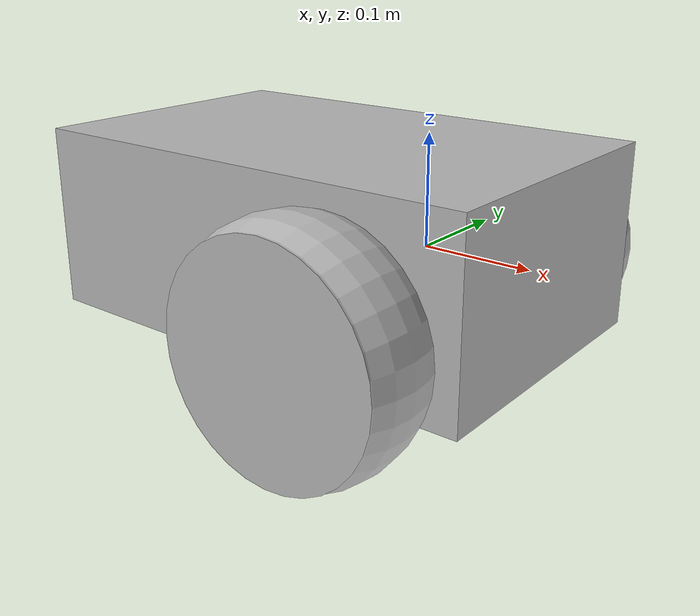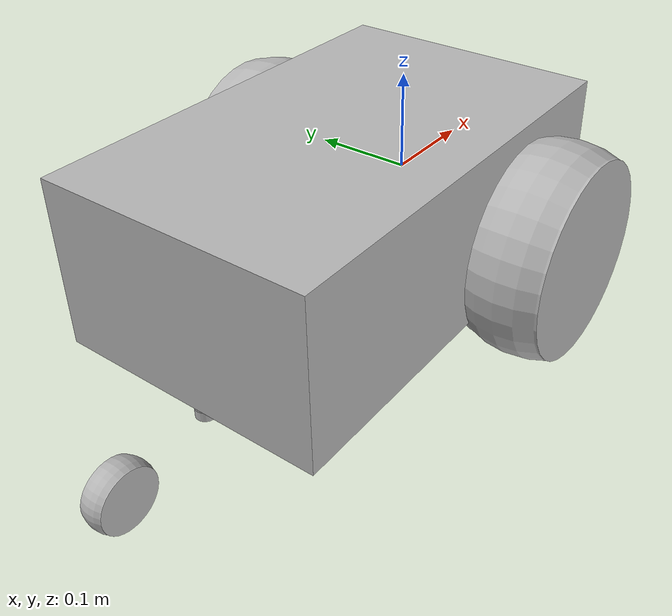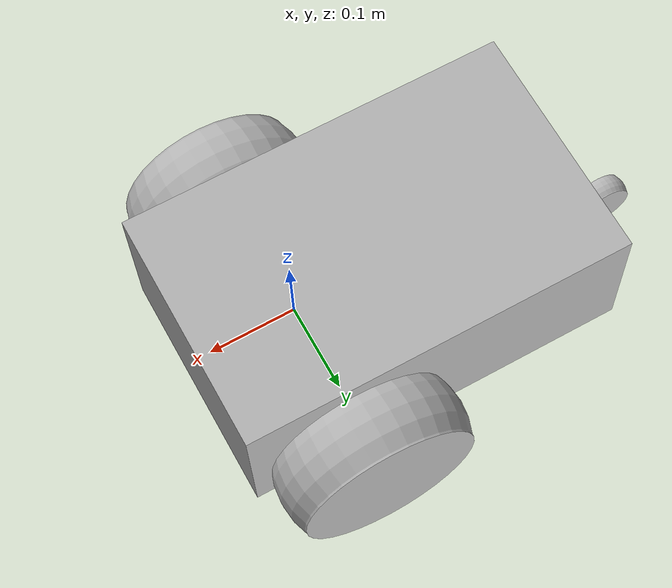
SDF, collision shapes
<sdf version='1.7'>
  <model name='pioneer2dx'>
    <link name='base_link'>
      <inertial>
        <pose>-0.1002 0 -0.0001 0 -0 0</pose>
        <mass>10.01</mass>
        <inertia>
          <ixx>0.0881454</ixx>
          <ixy>0</ixy>
          <ixz>-0.0001998</ixz>
          <iyy>0.197045</iyy>
          <iyz>0</iyz>
          <izz>0.236945</izz>
        </inertia>
      </inertial>
      <collision name='base_link_fixed_joint_lump__chasis_collision_collision'>
        <pose>-0.1 0 0 0 -0 0</pose>
        <geometry>
          <box>
            <size>0.445 0.277 0.17</size>
          </box>
        </geometry>
      </collision>
      <collision name='base_link_fixed_joint_lump__castor_plate_collision2_collision_1'>
        <pose>-0.3 0 -0.1 0 -0 0</pose>
        <geometry>
          <cylinder>
            <length>0.01</length>
            <radius>0.01</radius>
          </cylinder>
        </geometry>
      </collision>
      <visual name='base_link_fixed_joint_lump__chasis_visual_visual'>
        <pose>-0.1 0 0.04 0 -0 0</pose>
        <geometry>
          <mesh>
            <scale>1 1 1</scale>
            <uri>model://pioneer2dx/meshes/chassis.dae</uri>
          </mesh>
        </geometry>
      </visual>
      <visual name='base_link_fixed_joint_lump__castor_plate_visual2_visual_1'>
        <pose>-0.3 0 -0.1 0 -0 0</pose>
        <geometry>
          <cylinder>
            <length>0.01</length>
            <radius>0.01</radius>
          </cylinder>
        </geometry>
      </visual>
    </link>
    <joint name='plate2_plate' type='revolute'>
      <pose relative_to='base_link'>-0.3 0 -0.11 0 -0 0</pose>
      <parent>base_link</parent>
      <child>plate_castor</child>
      <axis>
        <xyz>0 0 1</xyz>
        <limit>
          <lower>-1e+16</lower>
          <upper>1e+16</upper>
        </limit>
        <dynamics>
          <damping>0.005</damping>
          <friction>0.01</friction>
          <spring_reference>0</spring_reference>
          <spring_stiffness>0</spring_stiffness>
        </dynamics>
      </axis>
    </joint>
    <link name='plate_castor'>
      <pose relative_to='plate2_plate'>0 0 0 0 -0 0</pose>
      <inertial>
        <pose>0 0 0 0 -0 0</pose>
        <mass>0.01</mass>
        <inertia>
          <ixx>4.55e-05</ixx>
          <ixy>0</ixy>
          <ixz>0</ixz>
          <iyy>4.55e-05</iyy>
          <iyz>0</iyz>
          <izz>4.55e-05</izz>
        </inertia>
      </inertial>
      <collision name='plate_castor_fixed_joint_lump__castor_plate_collision_collision'>
        <pose>0 0 0 0 -0 0</pose>
        <geometry>
          <cylinder>
            <length>0.01</length>
            <radius>0.01</radius>
          </cylinder>
        </geometry>
      </collision>
      <visual name='plate_castor_fixed_joint_lump__castor_plate_visual_visual'>
        <pose>0 0 0 0 -0 0</pose>
        <geometry>
          <cylinder>
            <length>0.01</length>
            <radius>0.01</radius>
          </cylinder>
        </geometry>
      </visual>
    </link>
    <joint name='plate_castor_joint' type='revolute'>
      <pose relative_to='plate_castor'>-0.1 0 -0.016 0 -0 0</pose>
      <parent>plate_castor</parent>
      <child>castor</child>
      <axis>
        <xyz>0 1 0</xyz>
        <limit>
          <lower>-1e+16</lower>
          <upper>1e+16</upper>
        </limit>
        <dynamics>
          <damping>0.005</damping>
          <friction>0.01</friction>
          <spring_reference>0</spring_reference>
          <spring_stiffness>0</spring_stiffness>
        </dynamics>
      </axis>
    </joint>
    <link name='castor'>
      <pose relative_to='plate_castor_joint'>0 0 0 0 -0 0</pose>
      <inertial>
        <pose>0 0 0 0 -0 0</pose>
        <mass>0.15</mass>
        <inertia>
          <ixx>0.000455</ixx>
          <ixy>0</ixy>
          <ixz>0</ixz>
          <iyy>0.00075</iyy>
          <iyz>0</iyz>
          <izz>0.000455</izz>
        </inertia>
      </inertial>
      <collision name='castor_collision_collision'>
        <pose>0 0 0 0 -0 0</pose>
        <geometry>
          <mesh>
            <scale>0.3 0.3 0.3</scale>
            <uri>model://pioneer2dx/meshes/wheel_v5.dae</uri>
          </mesh>
        </geometry>
        <surface>
					<friction>
						<ode>
							<mu>0.01</mu>
							<mu2>0.01</mu2>
							<slip1>0</slip1>
							<slip2>0</slip2>
							<maxVel>0.0</maxVel>
							<minDepth>0.001</minDepth>
						</ode>
					</friction>
				</surface>
      </collision>
      <visual name='castor_visual_visual'>
        <pose>0 0 0 0 -0 0</pose>
        <geometry>
          <mesh>
            <scale>0.3 0.3 0.3</scale>
            <uri>model://pioneer2dx/meshes/wheel_v5.dae</uri>
          </mesh>
        </geometry>
      </visual>
    </link>
    <joint name='left_dc_motor' type='revolute'>
      <pose relative_to='base_link'>0 0.17 -0.037 -1.57 0 0</pose>
      <parent>base_link</parent>
      <child>left_wheel</child>
      <axis>
        <xyz>0 0 1</xyz>
        <limit>
          <lower>-1e+16</lower>
          <upper>1e+16</upper>
        </limit>
        <dynamics>
          <damping>0.005</damping>
          <friction>0.01</friction>
          <spring_reference>0</spring_reference>
          <spring_stiffness>0</spring_stiffness>
        </dynamics>
      </axis>
      <physics>
        <provide_feedback>1</provide_feedback>
        <ode>
          <limit>
            <cfm>0</cfm>
            <erp>0.2</erp>
          </limit>
          <provide_feedback>1</provide_feedback>
        </ode>
      </physics>
    </joint>
    <link name='left_wheel'>
      <pose relative_to='left_dc_motor'>0 0 0 0 -0 0</pose>
      <inertial>
        <pose>0 0 0 0 -0 0</pose>
        <mass>1</mass>
        <inertia>
          <ixx>0.0030334</ixx>
          <ixy>0</ixy>
          <ixz>0</ixz>
          <iyy>0.00455</iyy>
          <iyz>0</iyz>
          <izz>0.005</izz>
        </inertia>
      </inertial>
      <collision name='left_wheel_fixed_joint_lump__left_collision_collision'>
        <pose>0 0 0 1.57 -0 0</pose>
        <geometry>
          <mesh>
            <scale>1 1 1</scale>
            <uri>model://pioneer2dx/meshes/wheel_v5.dae</uri>
          </mesh>
        </geometry>
        <surface>
					<friction>
						<ode>
							<mu>0.2</mu>
							<mu2>0.2</mu2>
							<slip1>0</slip1>
							<slip2>0</slip2>
							<maxVel>0.0</maxVel>
							<minDepth>0.001</minDepth>
						</ode>
					</friction>
				</surface>
      </collision>
      <visual name='left_wheel_fixed_joint_lump__left_visual_visual'>
        <pose>0 0 0 1.57 -0 0</pose>
        <geometry>
          <mesh>
            <scale>1 1 1</scale>
            <uri>model://pioneer2dx/meshes/wheel_v5.dae</uri>
          </mesh>
        </geometry>
      </visual>
    </link>
    <joint name='right_dc_motor' type='revolute'>
      <pose relative_to='base_link'>0 -0.17 -0.037 -1.57 0 0</pose>
      <parent>base_link</parent>
      <child>right_wheel</child>
      <axis>
        <xyz>0 0 1</xyz>
        <limit>
          <lower>-1e+16</lower>
          <upper>1e+16</upper>
        </limit>
        <dynamics>
          <damping>0.005</damping>
          <friction>0.01</friction>
          <spring_reference>0</spring_reference>
          <spring_stiffness>0</spring_stiffness>
        </dynamics>
      </axis>
      <physics>
        <provide_feedback>1</provide_feedback>
        <ode>
          <limit>
            <cfm>0</cfm>
            <erp>0.2</erp>
          </limit>
          <provide_feedback>1</provide_feedback>
        </ode>
      </physics>
    </joint>
    <link name='right_wheel'>
      <pose relative_to='right_dc_motor'>0 0 0 0 -0 0</pose>
      <inertial>
        <pose>0 0 0 0 -0 0</pose>
        <mass>1</mass>
        <inertia>
          <ixx>0.0030334</ixx>
          <ixy>0</ixy>
          <ixz>0</ixz>
          <iyy>0.00455</iyy>
          <iyz>0</iyz>
          <izz>0.005</izz>
        </inertia>
      </inertial>
      <collision name='right_wheel_fixed_joint_lump__right_collision_collision'>
        <pose>0 0 0 1.57 -0 0</pose>
        <geometry>
          <mesh>
            <scale>1 1 1</scale>
            <uri>model://pioneer2dx/meshes/wheel_v5.dae</uri>
          </mesh>
        </geometry>
        <surface>
					<friction>
						<ode>
							<mu>0.2</mu>
							<mu2>0.2</mu2>
							<slip1>0</slip1>
							<slip2>0</slip2>
							<maxVel>0.0</maxVel>
							<minDepth>0.001</minDepth>
						</ode>
					</friction>
				</surface>
      </collision>
      <visual name='right_wheel_fixed_joint_lump__right_visual_visual'>
        <pose>0 0 0 1.57 -0 0</pose>
        <geometry>
          <mesh>
            <scale>1 1 1</scale>
            <uri>model://pioneer2dx/meshes/wheel_v5.dae</uri>
          </mesh>
        </geometry>
      </visual>
    </link>
    <plugin name='motor_plugin' filename='libgazebo_ros_dc_motor.so'>
      <motor_shaft_joint>right_dc_motor</motor_shaft_joint>
      <motor_wrench_frame>right_wheel</motor_wrench_frame>
      <command_topic>right_dc_motor/command</command_topic>
      <velocity_topic>right_dc_motor/velocity</velocity_topic>
      <encoder_topic>right_dc_motor/encoder</encoder_topic>
      <current_topic>right_dc_motor/current</current_topic>
      <supply_topic>right_dc_motor/supply_voltage</supply_topic>
      <publish_encoder>1</publish_encoder>
      <publish_velocity>1</publish_velocity>
      <publish_current>1</publish_current>
      <publish_motor_joint_state>1</publish_motor_joint_state>
      <update_rate>100.0</update_rate>
      <motor_nominal_voltage>24.0</motor_nominal_voltage>
      <moment_of_inertia>0.001</moment_of_inertia>
      <armature_damping_ratio>0.0001</armature_damping_ratio>
      <electromotive_force_constant>0.03</electromotive_force_constant>
      <electric_resistance>13.8</electric_resistance>
      <electric_inductance>0.001</electric_inductance>
      <gear_ratio>72.0</gear_ratio>
      <encoder_ppr>111</encoder_ppr>
      <rosDebugLevel>Debug</rosDebugLevel>
    </plugin>
    <static>0</static>
    <plugin name='motor_plugin' filename='libgazebo_ros_dc_motor.so'>
      <motor_shaft_joint>left_dc_motor</motor_shaft_joint>
      <motor_wrench_frame>left_wheel</motor_wrench_frame>
      <command_topic>left_dc_motor/command</command_topic>
      <velocity_topic>left_dc_motor/velocity</velocity_topic>
      <encoder_topic>left_dc_motor/encoder</encoder_topic>
      <current_topic>left_dc_motor/current</current_topic>
      <supply_topic>left_dc_motor/supply_voltage</supply_topic>
      <publish_encoder>1</publish_encoder>
      <publish_velocity>1</publish_velocity>
      <publish_current>1</publish_current>
      <publish_motor_joint_state>1</publish_motor_joint_state>
      <update_rate>100.0</update_rate>
      <motor_nominal_voltage>24.0</motor_nominal_voltage>
      <moment_of_inertia>0.001</moment_of_inertia>
      <armature_damping_ratio>0.0001</armature_damping_ratio>
      <electromotive_force_constant>0.03</electromotive_force_constant>
      <electric_resistance>13.8</electric_resistance>
      <electric_inductance>0.001</electric_inductance>
      <gear_ratio>72.0</gear_ratio>
      <encoder_ppr>111</encoder_ppr>
      <rosDebugLevel>Debug</rosDebugLevel>
    </plugin>
  </model>
</sdf>
